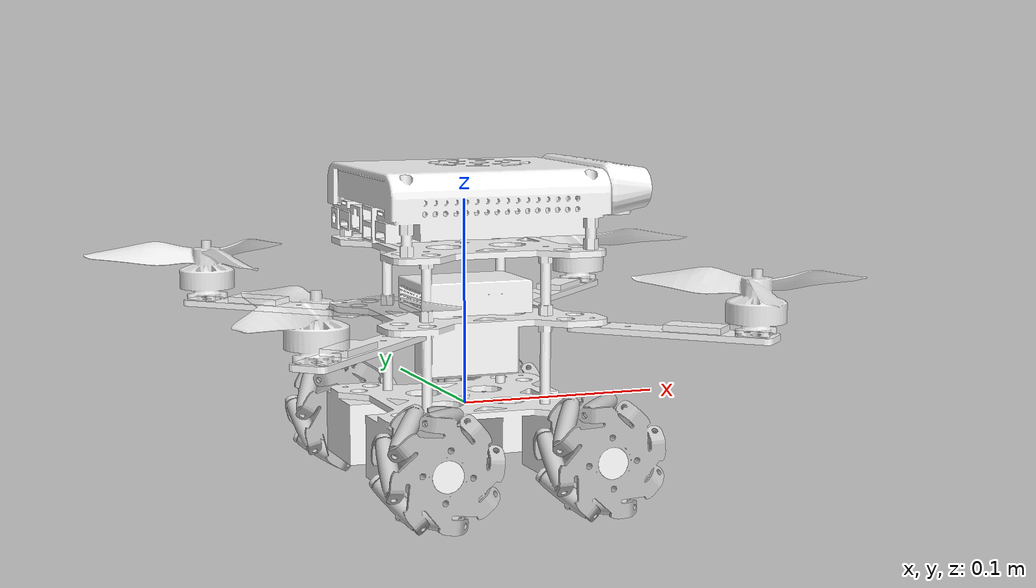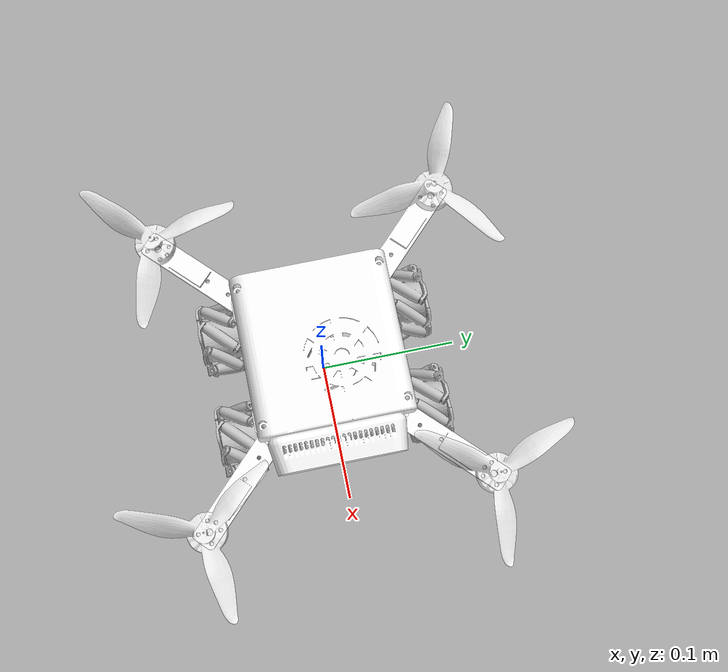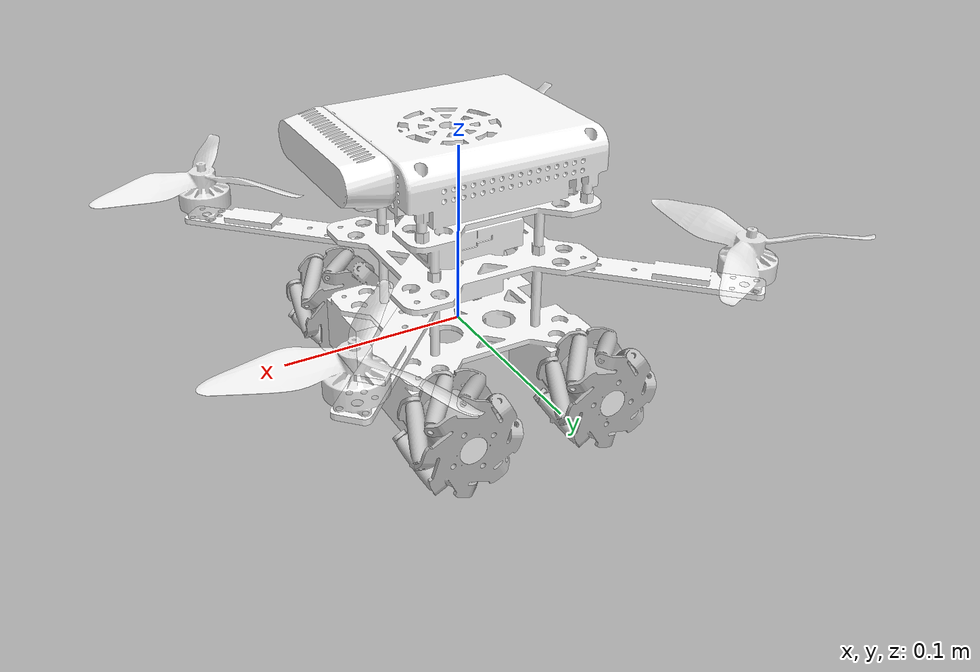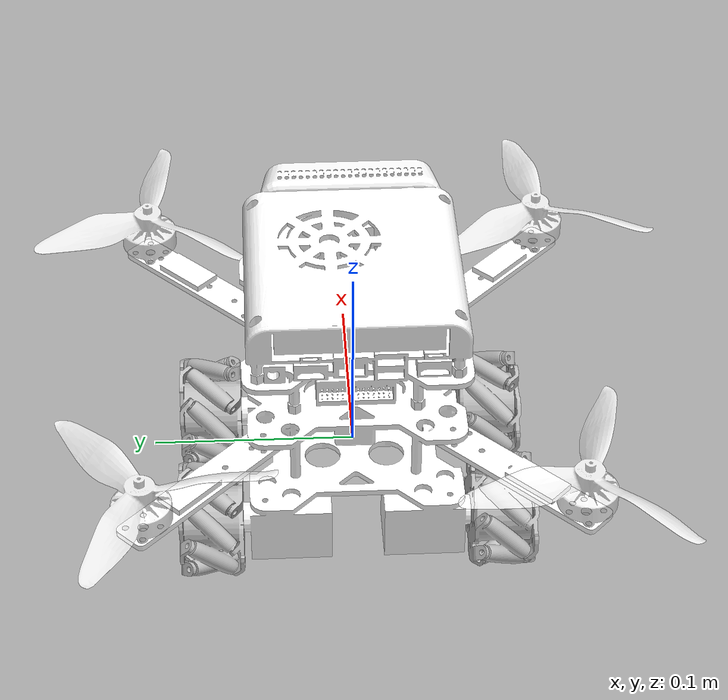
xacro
<?xml version="1.0"?>
<robot name="uav_v4" xmlns:xacro="http://www.ros.org/wiki/xacro">

  <xacro:macro name="mesh_link" params="name mass com ixx ixy ixz iyy iyz izz mesh color">
    <link name="${name}">
      <inertial>
        <origin xyz="${com}" rpy="0 0 0"/>
        <mass value="${mass}"/>
        <inertia ixx="${ixx}" ixy="${ixy}" ixz="${ixz}"
                 iyy="${iyy}" iyz="${iyz}" izz="${izz}"/>
      </inertial>
      <visual>
        <geometry><mesh filename="package://uav_v4/meshes/${mesh}"/></geometry>
        <material name="${name}_material"><color rgba="${color}"/></material>
      </visual>
      <collision>
        <geometry><mesh filename="package://uav_v4/meshes/${mesh}"/></geometry>
      </collision>
    </link>
  </xacro:macro>

  <xacro:macro name="rotor_link" params="name mass com ixx ixy ixz iyy iyz izz mesh color">
    <link name="${name}">
      <inertial>
        <origin xyz="${com}" rpy="0 0 0"/>
        <mass value="${mass}"/>
        <inertia ixx="${ixx}" ixy="${ixy}" ixz="${ixz}"
                 iyy="${iyy}" iyz="${iyz}" izz="${izz}"/>
      </inertial>
      <visual>
        <geometry><mesh filename="package://uav_v4/meshes/${mesh}"/></geometry>
        <material name="${name}_material"><color rgba="${color}"/></material>
      </visual>
      <!-- A convex primitive avoids ODE instability from a high-speed,
           non-convex SolidWorks triangle mesh. Visual/inertial truth is kept. -->
      <collision>
        <origin xyz="0 0 -0.011" rpy="0 0 0"/>
        <geometry><cylinder radius="0.065" length="0.030"/></geometry>
      </collision>
    </link>
  </xacro:macro>

  <xacro:macro name="wheel_joint" params="number xyz axis">
    <joint name="wheel${number}_joint" type="continuous">
      <origin xyz="${xyz}" rpy="0 0 0"/>
      <parent link="base_link"/>
      <child link="wheel${number}_link"/>
      <axis xyz="${axis}"/>
      <dynamics damping="0.02" friction="0.01"/>
    </joint>
  </xacro:macro>

  <xacro:macro name="arm_joint" params="number xyz">
    <joint name="arm${number}_joint" type="fixed">
      <origin xyz="${xyz}" rpy="0 0 0"/>
      <parent link="base_link"/>
      <child link="arm${number}_link"/>
    </joint>
  </xacro:macro>

  <xacro:macro name="rotor_joint" params="number xyz">
    <joint name="rotor_${number}_joint" type="continuous">
      <origin xyz="${xyz}" rpy="0 0 0"/>
      <parent link="base_link"/>
      <child link="rotor_${number}"/>
      <axis xyz="0 0 1"/>
      <dynamics damping="0.0001"/>
    </joint>
  </xacro:macro>

  <xacro:macro name="rotor_structure" params="number xyz com ixx ixy ixz iyy iyz izz">
    <link name="rotor_${number}_structure">
      <inertial>
        <origin xyz="${com}" rpy="0 0 0"/>
        <mass value="0.13856"/>
        <inertia ixx="${ixx}" ixy="${ixy}" ixz="${ixz}"
                 iyy="${iyy}" iyz="${iyz}" izz="${izz}"/>
      </inertial>
    </link>
    <joint name="rotor_${number}_structure_joint" type="fixed">
      <origin xyz="${xyz}" rpy="0 0 0"/>
      <parent link="base_link"/>
      <child link="rotor_${number}_structure"/>
    </joint>
  </xacro:macro>

  <xacro:mesh_link name="base_link" mass="2.2782"
    com="0.0027205 3.1868e-05 0.016326"
    ixx="0.0010088" ixy="-1.2793e-06" ixz="5.9514e-06"
    iyy="0.00068372" iyz="7.939e-06" izz="0.0014123"
    mesh="base_link.STL" color="1 1 1 1"/>

  <xacro:mesh_link name="wheel1_link" mass="0.037807" com="0 0.015781 0"
    ixx="4.513e-06" ixy="-1.3835e-21" ixz="-1.7984e-20"
    iyy="5.9992e-06" iyz="-1.2662e-21" izz="4.513e-06"
    mesh="wheel1_link.STL" color="0.75294 0.75294 0.75294 1"/>
  <xacro:mesh_link name="wheel2_link" mass="0.037807" com="0 0.015781 0"
    ixx="4.513e-06" ixy="-1.3736e-21" ixz="-1.8352e-20"
    iyy="5.9992e-06" iyz="-1.5042e-21" izz="4.513e-06"
    mesh="wheel2_link.STL" color="0.75294 0.75294 0.75294 1"/>
  <xacro:mesh_link name="wheel3_link" mass="0.037807" com="0 -0.015781 0"
    ixx="4.513e-06" ixy="1.4366e-21" ixz="1.0591e-20"
    iyy="5.9992e-06" iyz="-7.4952e-22" izz="4.513e-06"
    mesh="wheel3_link.STL" color="0.75294 0.75294 0.75294 1"/>
  <xacro:mesh_link name="wheel4_link" mass="0.037807" com="0 -0.015719 0"
    ixx="4.513e-06" ixy="6.0908e-23" ixz="1.5908e-20"
    iyy="5.9992e-06" iyz="-2.0557e-21" izz="4.513e-06"
    mesh="wheel4_link.STL" color="0.75294 0.75294 0.75294 1"/>

  <xacro:wheel_joint number="1" xyz="0.04 -0.088 -0.015" axis="0 1 0"/>
  <xacro:wheel_joint number="2" xyz="-0.04 -0.088 -0.015" axis="0 1 0"/>
  <xacro:wheel_joint number="3" xyz="0.04 0.088 -0.015" axis="0 -1 0"/>
  <xacro:wheel_joint number="4" xyz="-0.04 0.088 -0.015" axis="0 1 0"/>

  <xacro:mesh_link name="arm1_link" mass="0.010108" com="0.029359 -0.029033 0.001856"
    ixx="3.6495e-06" ixy="3.4138e-06" ixz="-5.9984e-21"
    iyy="3.7257e-06" iyz="6.5036e-21" izz="7.3601e-06"
    mesh="arm1_link.STL" color="1 1 1 1"/>
  <xacro:mesh_link name="arm2_link" mass="0.0101076088045098"
    com="-0.0292962581830913 0.0289714060323844 0.00185602485905342"
    ixx="3.64954032673343e-06" ixy="3.41381876615257e-06" ixz="-1.77688991786571e-21"
    iyy="3.72567317704808e-06" iyz="2.36511102283099e-21" izz="7.36005209057475e-06"
    mesh="arm2_link.STL" color="1 1 1 1"/>
  <xacro:mesh_link name="arm3_link" mass="0.010108" com="0.029033 0.029359 0.001856"
    ixx="3.7257e-06" ixy="-3.4138e-06" ixz="8.2237e-21"
    iyy="3.6495e-06" iyz="8.7612e-21" izz="7.3601e-06"
    mesh="arm3_link.STL" color="1 1 1 1"/>
  <xacro:mesh_link name="arm4_link" mass="0.010108" com="-0.029033 -0.029359 0.001856"
    ixx="3.7257e-06" ixy="-3.4138e-06" ixz="3.5619e-21"
    iyy="3.6495e-06" iyz="3.8509e-21" izz="7.3601e-06"
    mesh="arm4_link.STL" color="1 1 1 1"/>

  <xacro:arm_joint number="1" xyz="0.0475 -0.0455 0.04"/>
  <xacro:arm_joint number="2" xyz="-0.0475 0.0455 0.04"/>
  <xacro:arm_joint number="3" xyz="0.0475 0.0455 0.04"/>
  <xacro:arm_joint number="4" xyz="-0.0475 -0.0455 0.04"/>

  <xacro:rotor_link name="rotor_0" mass="0.005" com="-0.00012069 6.7575e-05 -0.015469"
    ixx="3.73049595988e-07" ixy="1.33867372527e-11" ixz="-2.4544789635e-13"
    iyy="3.73049595988e-07" iyz="2.4970047367e-12" izz="5.29604346615e-07"
    mesh="wing1_link.STL" color="1 1 1 0.85"/>
  <xacro:rotor_link name="rotor_1" mass="0.005" com="-0.00013824 -3.4396e-06 -0.015469"
    ixx="3.73049595988e-07" ixy="-7.73613820006e-12" ixz="-9.9592504876e-13"
    iyy="3.73049595988e-07" iyz="-3.33331011424e-12" izz="5.29604346615e-07"
    mesh="wing2_link.STL" color="1 1 1 0.85"/>
  <xacro:rotor_link name="rotor_2" mass="0.005" com="0.00013284 3.9015e-05 -0.015469"
    ixx="3.73049595988e-07" ixy="3.3933546949e-12" ixz="2.87945806631e-14"
    iyy="3.73014767345e-07" iyz="-4.77082752856e-12" izz="5.29569517972e-07"
    mesh="wing3_link.STL" color="1 1 1 0.85"/>
  <xacro:rotor_link name="rotor_3" mass="0.005" com="-8.3369e-05 0.00011068 -0.015469"
    ixx="3.73049595988e-07" ixy="-7.68180551686e-12" ixz="-1.85399832823e-13"
    iyy="3.73049595988e-07" iyz="-3.91090833101e-12" izz="5.29604346615e-07"
    mesh="wing4_link.STL" color="1 1 1 0.85"/>

  <xacro:rotor_joint number="0" xyz="0.104504 -0.10182 0.0693"/>
  <xacro:rotor_joint number="1" xyz="-0.104245 0.101756 0.0693"/>
  <xacro:rotor_joint number="2" xyz="0.103619440914974 0.102344290523756 0.0693"/>
  <xacro:rotor_joint number="3" xyz="-0.103669 -0.102494 0.0693"/>

  <!-- Fixed motor/pod share of each exported 0.14356 kg wing assembly.
       Fixed + rotating terms exactly recover each original mass and inertia. -->
  <xacro:rotor_structure number="0" xyz="0.104504 -0.10182 0.0693"
    com="-0.00012069 6.7575e-05 -0.015469"
    ixx="1.0337950404e-05" ixy="3.70973262747e-10" ixz="-6.80185210365e-12"
    iyy="1.0337950404e-05" iyz="6.91969952633e-11" izz="1.46763956534e-05"/>
  <xacro:rotor_structure number="1" xyz="-0.104245 0.101756 0.0693"
    com="-0.00013824 -3.4396e-06 -0.015469"
    ixx="1.0337950404e-05" ixy="-2.143838618e-10" ixz="-2.75990749512e-11"
    iyy="1.0337950404e-05" iyz="-9.23726898858e-11" izz="1.46763956534e-05"/>
  <xacro:rotor_structure number="2" xyz="0.103619440914974 0.102344290523756 0.0693"
    com="0.00013284 3.9015e-05 -0.015469"
    ixx="1.0337950404e-05" ixy="9.40366453051e-11" ixz="7.97955419337e-13"
    iyy="1.03369852327e-05" iyz="-1.32209172471e-10" izz="1.4675430482e-05"/>
  <xacro:rotor_structure number="3" xyz="-0.103669 -0.102494 0.0693"
    com="-8.3369e-05 0.00011068 -0.015469"
    ixx="1.0337950404e-05" ixy="-2.12878194483e-10" ixz="-5.13780016718e-12"
    iyy="1.0337950404e-05" iyz="-1.08379091669e-10" izz="1.46763956534e-05"/>

  <xacro:macro name="motor_plugin" params="number direction">
    <gazebo>
      <plugin name="uav_v4_motor_${number}" filename="librotors_gazebo_motor_model.so">
        <robotNamespace>uav_v4</robotNamespace>
        <jointName>rotor_${number}_joint</jointName>
        <linkName>rotor_${number}</linkName>
        <turningDirection>${direction}</turningDirection>
        <timeConstantUp>0.0125</timeConstantUp>
        <timeConstantDown>0.025</timeConstantDown>
        <maxRotVelocity>1100</maxRotVelocity>
        <motorConstant>1.568e-05</motorConstant>
        <momentConstant>0.06</momentConstant>
        <commandSubTopic>gazebo/command/motor_speed</commandSubTopic>
        <motorNumber>${number}</motorNumber>
        <rotorDragCoefficient>0.000175</rotorDragCoefficient>
        <rollingMomentCoefficient>1e-06</rollingMomentCoefficient>
        <motorSpeedPubTopic>motor_speed/${number}</motorSpeedPubTopic>
        <rotorVelocitySlowdownSim>10</rotorVelocitySlowdownSim>
      </plugin>
    </gazebo>
  </xacro:macro>

  <!-- Diagonal pairs share direction; adjacent rotors oppose for yaw balance. -->
  <xacro:motor_plugin number="0" direction="ccw"/>
  <xacro:motor_plugin number="1" direction="ccw"/>
  <xacro:motor_plugin number="2" direction="cw"/>
  <xacro:motor_plugin number="3" direction="cw"/>

  <gazebo>
    <plugin name="uav_v4_multirotor_base" filename="librotors_gazebo_multirotor_base_plugin.so">
      <robotNamespace>uav_v4</robotNamespace>
      <linkName>base_link</linkName>
      <rotorVelocitySlowdownSim>10</rotorVelocitySlowdownSim>
    </plugin>
    <plugin name="uav_v4_controller_interface" filename="librotors_gazebo_controller_interface.so">
      <robotNamespace>uav_v4</robotNamespace>
      <commandAttitudeThrustSubTopic>command/attitude</commandAttitudeThrustSubTopic>
      <commandRateThrustSubTopic>command/rate</commandRateThrustSubTopic>
      <commandMotorSpeedSubTopic>command/motor_speed</commandMotorSpeedSubTopic>
      <imuSubTopic>imu</imuSubTopic>
      <motorSpeedCommandPubTopic>gazebo/command/motor_speed</motorSpeedCommandPubTopic>
    </plugin>
    <plugin name="uav_v4_imu" filename="librotors_gazebo_imu_plugin.so">
      <robotNamespace>uav_v4</robotNamespace>
      <linkName>base_link</linkName>
      <imuTopic>imu</imuTopic>
      <gyroscopeNoiseDensity>0.0003394</gyroscopeNoiseDensity>
      <gyroscopeRandomWalk>3.8785e-05</gyroscopeRandomWalk>
      <gyroscopeBiasCorrelationTime>1000.0</gyroscopeBiasCorrelationTime>
      <gyroscopeTurnOnBiasSigma>0.0087</gyroscopeTurnOnBiasSigma>
      <accelerometerNoiseDensity>0.004</accelerometerNoiseDensity>
      <accelerometerRandomWalk>0.006</accelerometerRandomWalk>
      <accelerometerBiasCorrelationTime>300.0</accelerometerBiasCorrelationTime>
      <accelerometerTurnOnBiasSigma>0.196</accelerometerTurnOnBiasSigma>
    </plugin>
    <plugin name="uav_v4_odometry" filename="librotors_gazebo_odometry_plugin.so">
      <robotNamespace>uav_v4</robotNamespace>
      <linkName>base_link</linkName>
      <poseTopic>pose</poseTopic>
      <poseWithCovarianceTopic>pose_with_covariance</poseWithCovarianceTopic>
      <positionTopic>position</positionTopic>
      <transformTopic>transform</transformTopic>
      <odometryTopic>odometry</odometryTopic>
      <parentFrameId>world</parentFrameId>
      <childFrameId>uav_v4/base_link</childFrameId>
      <measurementDivisor>1</measurementDivisor>
      <measurementDelay>0</measurementDelay>
      <unknownDelay>0.0</unknownDelay>
      <noiseNormalPosition>0 0 0</noiseNormalPosition>
      <noiseNormalQuaternion>0 0 0</noiseNormalQuaternion>
      <noiseNormalLinearVelocity>0 0 0</noiseNormalLinearVelocity>
      <noiseNormalAngularVelocity>0 0 0</noiseNormalAngularVelocity>
      <noiseUniformPosition>0 0 0</noiseUniformPosition>
      <noiseUniformQuaternion>0 0 0</noiseUniformQuaternion>
      <noiseUniformLinearVelocity>0 0 0</noiseUniformLinearVelocity>
      <noiseUniformAngularVelocity>0 0 0</noiseUniformAngularVelocity>
    </plugin>
    <plugin name="uav_v4_mode_aware_ground" filename="libmode_aware_planar_move_plugin.so">
      <commandTopic>/mecanum/cmd_vel</commandTopic>
      <modeTopic>/rescue/mode</modeTopic>
      <disarmedTopic>/rescue/rotors/disarmed</disarmedTopic>
      <commandTimeout>0.5</commandTimeout>
    </plugin>
  </gazebo>
</robot>
